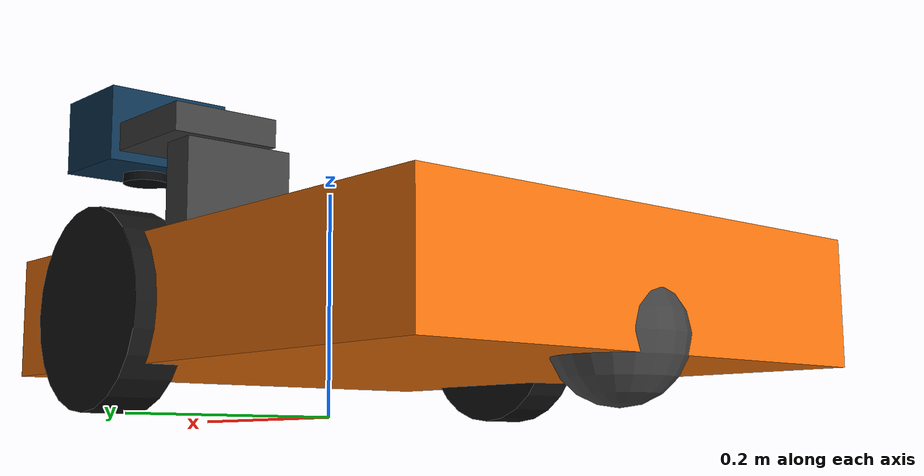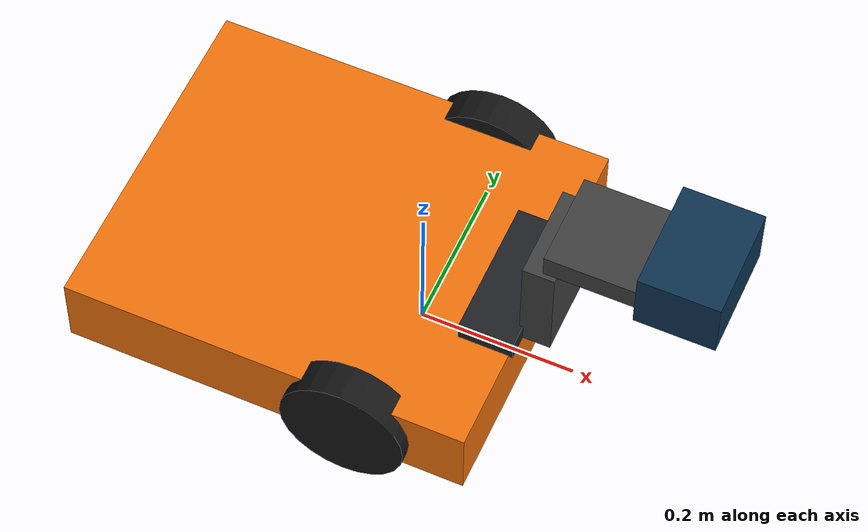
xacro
<?xml version="1.0"?>
<robot name="climbot" xmlns:xacro="http://www.ros.org/wiki/xacro">
  <xacro:arg name="base_length" default="0.52"/>
  <xacro:arg name="base_width" default="0.44"/>
  <xacro:arg name="base_thickness" default="0.10"/>
  <xacro:arg name="base_mass" default="12.0"/>
  <xacro:arg name="base_x" default="-0.11"/>
  <xacro:arg name="base_y" default="0.0"/>
  <xacro:arg name="base_z" default="0.085"/>
  <xacro:arg name="wheel_radius" default="0.08"/>
  <xacro:arg name="wheel_width" default="0.045"/>
  <xacro:arg name="wheel_mass" default="1.0"/>
  <xacro:arg name="wheel_axle_x" default="0.0"/>
  <xacro:arg name="wheel_separation" default="0.43"/>
  <xacro:arg name="caster_radius" default="0.05"/>
  <xacro:arg name="caster_mass" default="0.5"/>
  <xacro:arg name="caster_x" default="-0.33"/>
  <xacro:arg name="camera_body_size_x" default="0.10"/>
  <xacro:arg name="camera_body_size_y" default="0.14"/>
  <xacro:arg name="camera_body_size_z" default="0.08"/>
  <xacro:arg name="camera_body_mass" default="1.5"/>
  <xacro:arg name="camera_body_x" default="0.340"/>
  <xacro:arg name="camera_body_y" default="0.000"/>
  <xacro:arg name="camera_body_z" default="0.315"/>
  <xacro:arg name="camera_optical_x" default="0.340"/>
  <xacro:arg name="camera_optical_y" default="0.000"/>
  <xacro:arg name="camera_optical_z" default="0.275"/>
  <xacro:arg name="camera_optical_roll" default="3.141592653589793"/>
  <xacro:arg name="camera_optical_pitch" default="0.0"/>
  <xacro:arg name="camera_optical_yaw" default="-1.5707963267948966"/>
  <xacro:arg name="camera_bracket_mass" default="0.5"/>
  <xacro:arg name="camera_bracket_x" default="0.220"/>
  <xacro:arg name="camera_bracket_y" default="0.000"/>
  <xacro:arg name="camera_bracket_z" default="0.247"/>
  <xacro:arg name="camera_bracket_inertia_x" default="0.20"/>
  <xacro:arg name="camera_bracket_inertia_y" default="0.12"/>
  <xacro:arg name="camera_bracket_inertia_z" default="0.17"/>
  <xacro:arg name="camera_bracket_upright_size_x" default="0.04"/>
  <xacro:arg name="camera_bracket_upright_size_y" default="0.12"/>
  <xacro:arg name="camera_bracket_upright_size_z" default="0.14"/>
  <xacro:arg name="camera_bracket_upright_x" default="0.170"/>
  <xacro:arg name="camera_bracket_upright_y" default="0.000"/>
  <xacro:arg name="camera_bracket_upright_z" default="0.205"/>
  <xacro:arg name="camera_bracket_arm_size_x" default="0.18"/>
  <xacro:arg name="camera_bracket_arm_size_y" default="0.12"/>
  <xacro:arg name="camera_bracket_arm_size_z" default="0.03"/>
  <xacro:arg name="camera_bracket_arm_x" default="0.265"/>
  <xacro:arg name="camera_bracket_arm_y" default="0.000"/>
  <xacro:arg name="camera_bracket_arm_z" default="0.300"/>

  <xacro:property name="length" value="$(arg base_length)"/>
  <xacro:property name="width" value="$(arg base_width)"/>
  <xacro:property name="thickness" value="$(arg base_thickness)"/>
  <xacro:property name="base_mass" value="$(arg base_mass)"/>
  <xacro:property name="base_x" value="$(arg base_x)"/>
  <xacro:property name="base_y" value="$(arg base_y)"/>
  <xacro:property name="base_z" value="$(arg base_z)"/>
  <xacro:property name="wheel_radius" value="$(arg wheel_radius)"/>
  <xacro:property name="wheel_width" value="$(arg wheel_width)"/>
  <xacro:property name="wheel_mass" value="$(arg wheel_mass)"/>
  <xacro:property name="caster_radius" value="$(arg caster_radius)"/>
  <xacro:property name="caster_mass" value="$(arg caster_mass)"/>
  <xacro:property name="half_track" value="${$(arg wheel_separation) / 2.0}"/>

  <xacro:property name="wheel_offset_x" value="$(arg wheel_axle_x)"/>
  <xacro:property name="wheel_offset_z" value="${wheel_radius}"/>
  <xacro:property name="caster_offset_x" value="$(arg caster_x)"/>
  <xacro:property name="caster_offset_z" value="${caster_radius}"/>

  <material name="body_orange">
    <color rgba="0.95 0.45 0.05 1"/>
  </material>
  <material name="marker_dark">
    <color rgba="0.12 0.13 0.15 1"/>
  </material>
  <material name="wheel_black">
    <color rgba="0.08 0.08 0.08 1"/>
  </material>
  <material name="caster_grey">
    <color rgba="0.25 0.25 0.25 1"/>
  </material>
  <material name="camera_blue">
    <color rgba="0.05 0.20 0.32 1"/>
  </material>
  <material name="lens_dark">
    <color rgba="0.02 0.03 0.04 1"/>
  </material>

  <xacro:macro name="drive_wheel" params="side sign">
    <link name="${side}_wheel_link">
      <inertial>
        <mass value="${wheel_mass}"/>
        <inertia
          ixx="${wheel_mass * (3.0 * wheel_radius * wheel_radius + wheel_width * wheel_width) / 12.0}"
          iyy="${wheel_mass * (3.0 * wheel_radius * wheel_radius + wheel_width * wheel_width) / 12.0}"
          izz="${wheel_mass * wheel_radius * wheel_radius / 2.0}"
          ixy="0" ixz="0" iyz="0"/>
      </inertial>
      <visual>
        <geometry>
          <cylinder radius="${wheel_radius}" length="${wheel_width}"/>
        </geometry>
        <material name="wheel_black"/>
      </visual>
      <collision>
        <geometry>
          <cylinder radius="${wheel_radius}" length="${wheel_width}"/>
        </geometry>
      </collision>
    </link>

    <joint name="${side}_wheel_joint" type="continuous">
      <parent link="base_link"/>
      <child link="${side}_wheel_link"/>
      <origin xyz="${wheel_offset_x} ${sign * half_track} ${wheel_offset_z}"
              rpy="1.57079632679 0 0"/>
      <!-- The roll above sends the wheel's local +Z along the model's -Y, so
           the axle that the Gazebo model states as model +Y is -Z here. -->
      <axis xyz="0 0 -1"/>
    </joint>
  </xacro:macro>

  <link name="base_link">
    <inertial>
      <origin xyz="${base_x} ${base_y} ${base_z}"/>
      <mass value="${base_mass}"/>
      <inertia
        ixx="${base_mass * (width * width + thickness * thickness) / 12.0}"
        iyy="${base_mass * (length * length + thickness * thickness) / 12.0}"
        izz="${base_mass * (length * length + width * width) / 12.0}"
        ixy="0" ixz="0" iyz="0"/>
    </inertial>
    <visual>
      <origin xyz="${base_x} ${base_y} ${base_z}"/>
      <geometry>
        <box size="${length} ${width} ${thickness}"/>
      </geometry>
      <material name="body_orange"/>
    </visual>
    <collision>
      <origin xyz="${base_x} ${base_y} ${base_z}"/>
      <geometry>
        <box size="${length} ${width} ${thickness}"/>
      </geometry>
    </collision>
  </link>

  <link name="front_marker_link">
    <visual>
      <geometry>
        <box size="0.07 ${width * 0.41} 0.025"/>
      </geometry>
      <material name="marker_dark"/>
    </visual>
  </link>
  <joint name="front_marker_joint" type="fixed">
    <parent link="base_link"/>
    <child link="front_marker_link"/>
    <origin xyz="${base_x + length / 2.0 - 0.03} ${base_y}
                 ${base_z + thickness / 2.0 + 0.011}"/>
  </joint>

  <!-- The IMU is co-located with base_link, so this frame is coincident
       with it. It exists so an offset mount only needs robot.yaml changed. -->
  <link name="imu_link"/>
  <joint name="imu_joint" type="fixed">
    <parent link="base_link"/>
    <child link="imu_link"/>
    <origin xyz="0 0 0" rpy="0 0 0"/>
  </joint>

  <xacro:drive_wheel side="left" sign="1"/>
  <xacro:drive_wheel side="right" sign="-1"/>

  <link name="caster_ball_link">
    <inertial>
      <mass value="${caster_mass}"/>
      <inertia ixx="${0.4 * caster_mass * caster_radius * caster_radius}"
               iyy="${0.4 * caster_mass * caster_radius * caster_radius}"
               izz="${0.4 * caster_mass * caster_radius * caster_radius}"
               ixy="0" ixz="0" iyz="0"/>
    </inertial>
    <visual>
      <geometry>
        <sphere radius="${caster_radius}"/>
      </geometry>
      <material name="caster_grey"/>
    </visual>
    <collision>
      <geometry>
        <sphere radius="${caster_radius}"/>
      </geometry>
    </collision>
  </link>

  <!-- URDF has no ball joint. The caster's own spin drives nothing further
       down the tree, so a fixed frame at its centre is enough for TF. -->
  <joint name="caster_ball_joint" type="fixed">
    <parent link="base_link"/>
    <child link="caster_ball_link"/>
    <origin xyz="${caster_offset_x} 0 ${caster_offset_z}" rpy="0 0 0"/>
  </joint>

  <link name="inspection_camera_bracket_link">
    <inertial>
      <mass value="$(arg camera_bracket_mass)"/>
      <inertia
        ixx="${float('$(arg camera_bracket_mass)') * (float('$(arg camera_bracket_inertia_y)')**2 + float('$(arg camera_bracket_inertia_z)')**2) / 12.0}"
        iyy="${float('$(arg camera_bracket_mass)') * (float('$(arg camera_bracket_inertia_x)')**2 + float('$(arg camera_bracket_inertia_z)')**2) / 12.0}"
        izz="${float('$(arg camera_bracket_mass)') * (float('$(arg camera_bracket_inertia_x)')**2 + float('$(arg camera_bracket_inertia_y)')**2) / 12.0}"
        ixy="0" ixz="0" iyz="0"/>
    </inertial>
    <visual name="upright_visual">
      <origin xyz="${float('$(arg camera_bracket_upright_x)') - float('$(arg camera_bracket_x)')} ${float('$(arg camera_bracket_upright_y)') - float('$(arg camera_bracket_y)')} ${float('$(arg camera_bracket_upright_z)') - float('$(arg camera_bracket_z)')}"/>
      <geometry><box size="$(arg camera_bracket_upright_size_x) $(arg camera_bracket_upright_size_y) $(arg camera_bracket_upright_size_z)"/></geometry>
      <material name="caster_grey"/>
    </visual>
    <visual name="top_arm_visual">
      <origin xyz="${float('$(arg camera_bracket_arm_x)') - float('$(arg camera_bracket_x)')} ${float('$(arg camera_bracket_arm_y)') - float('$(arg camera_bracket_y)')} ${float('$(arg camera_bracket_arm_z)') - float('$(arg camera_bracket_z)')}"/>
      <geometry><box size="$(arg camera_bracket_arm_size_x) $(arg camera_bracket_arm_size_y) $(arg camera_bracket_arm_size_z)"/></geometry>
      <material name="caster_grey"/>
    </visual>
    <collision name="upright_collision">
      <origin xyz="${float('$(arg camera_bracket_upright_x)') - float('$(arg camera_bracket_x)')} ${float('$(arg camera_bracket_upright_y)') - float('$(arg camera_bracket_y)')} ${float('$(arg camera_bracket_upright_z)') - float('$(arg camera_bracket_z)')}"/>
      <geometry><box size="$(arg camera_bracket_upright_size_x) $(arg camera_bracket_upright_size_y) $(arg camera_bracket_upright_size_z)"/></geometry>
    </collision>
    <collision name="top_arm_collision">
      <origin xyz="${float('$(arg camera_bracket_arm_x)') - float('$(arg camera_bracket_x)')} ${float('$(arg camera_bracket_arm_y)') - float('$(arg camera_bracket_y)')} ${float('$(arg camera_bracket_arm_z)') - float('$(arg camera_bracket_z)')}"/>
      <geometry><box size="$(arg camera_bracket_arm_size_x) $(arg camera_bracket_arm_size_y) $(arg camera_bracket_arm_size_z)"/></geometry>
    </collision>
  </link>
  <joint name="inspection_camera_bracket_joint" type="fixed">
    <parent link="base_link"/>
    <child link="inspection_camera_bracket_link"/>
    <origin xyz="$(arg camera_bracket_x) $(arg camera_bracket_y) $(arg camera_bracket_z)"/>
  </joint>

  <link name="inspection_camera_link">
    <inertial>
      <mass value="$(arg camera_body_mass)"/>
      <inertia
        ixx="${float('$(arg camera_body_mass)') * (float('$(arg camera_body_size_y)')**2 + float('$(arg camera_body_size_z)')**2) / 12.0}"
        iyy="${float('$(arg camera_body_mass)') * (float('$(arg camera_body_size_x)')**2 + float('$(arg camera_body_size_z)')**2) / 12.0}"
        izz="${float('$(arg camera_body_mass)') * (float('$(arg camera_body_size_x)')**2 + float('$(arg camera_body_size_y)')**2) / 12.0}"
        ixy="0" ixz="0" iyz="0"/>
    </inertial>
    <visual name="body_visual">
      <geometry><box size="$(arg camera_body_size_x) $(arg camera_body_size_y) $(arg camera_body_size_z)"/></geometry>
      <material name="camera_blue"/>
    </visual>
    <visual name="lens_visual">
      <origin xyz="0 0 ${float('$(arg camera_optical_z)') - float('$(arg camera_body_z)') - 0.004}"/>
      <geometry><cylinder radius="0.025" length="0.012"/></geometry>
      <material name="lens_dark"/>
    </visual>
    <collision name="body_collision">
      <geometry><box size="$(arg camera_body_size_x) $(arg camera_body_size_y) $(arg camera_body_size_z)"/></geometry>
    </collision>
  </link>
  <joint name="inspection_camera_joint" type="fixed">
    <parent link="base_link"/>
    <child link="inspection_camera_link"/>
    <origin xyz="$(arg camera_body_x) $(arg camera_body_y) $(arg camera_body_z)"/>
  </joint>

  <link name="inspection_camera_optical_frame"/>
  <joint name="inspection_camera_optical_joint" type="fixed">
    <parent link="inspection_camera_link"/>
    <child link="inspection_camera_optical_frame"/>
    <origin
      xyz="${float('$(arg camera_optical_x)') - float('$(arg camera_body_x)')} ${float('$(arg camera_optical_y)') - float('$(arg camera_body_y)')} ${float('$(arg camera_optical_z)') - float('$(arg camera_body_z)')}"
      rpy="$(arg camera_optical_roll) $(arg camera_optical_pitch) $(arg camera_optical_yaw)"/>
  </joint>
</robot>
